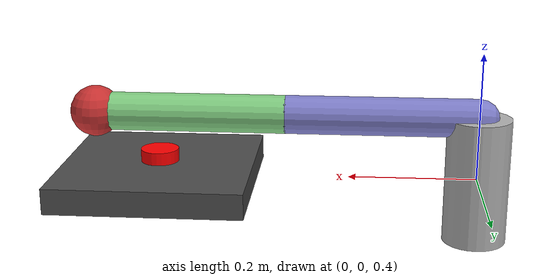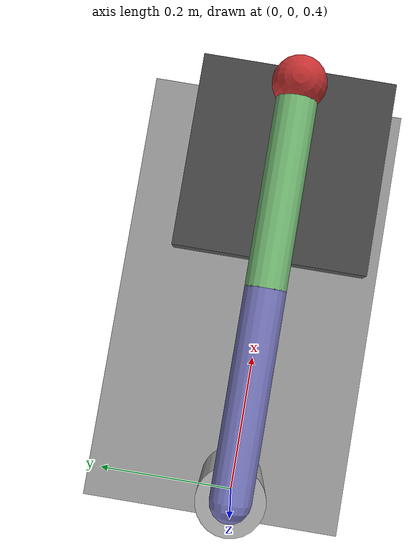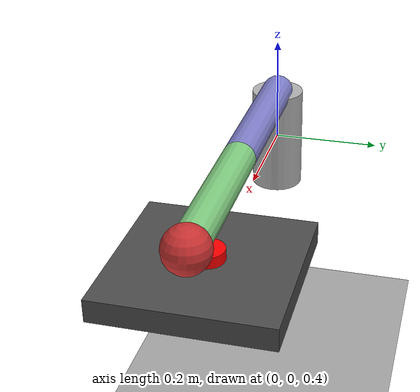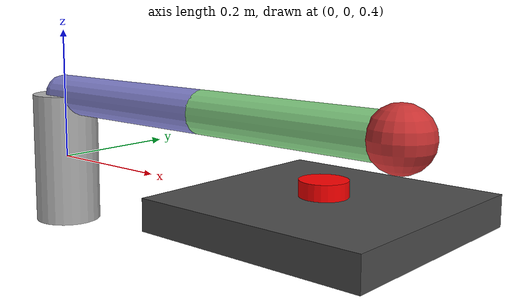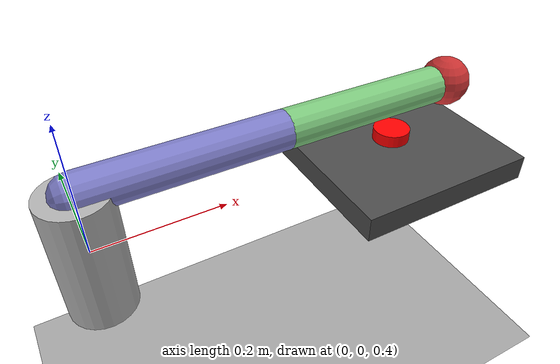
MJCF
<mujoco model="button">
  <compiler angle="radian" coordinate="local"/>
  <option timestep="0.002" gravity="0 0 -9.81"/>

  <visual>
    <global offwidth="224" offheight="224"/>
  </visual>

  <asset>
    <texture name="grid" type="2d" builtin="checker" width="512" height="512"/>
    <material name="grid" texture="grid" texrepeat="1 1"/>
  </asset>

  <worldbody>
    <light pos="0 0 1.5" dir="0 0 -1"/>
    <camera name="fixed" pos="0.8 0.8 0.8" xyaxes="-1 1 0 -0.5 -0.5 1"/>
    <geom name="floor" type="plane" size="2 2 .1" material="grid"/>

    <!-- Button panel -->
    <body name="panel" pos="0.5 0 0.4">
      <geom type="box" size="0.15 0.15 0.02" rgba="0.3 0.3 0.3 1"/>

      <!-- Button -->
      <body name="button" pos="0 0 0.03">
        <joint name="button_press" type="slide" axis="0 0 1" range="-0.02 0" stiffness="100" damping="10"/>
        <geom type="cylinder" size="0.03 0.01" rgba="1 0 0 1"/>
      </body>
    </body>

    <!-- Robot arm -->
    <body name="base" pos="0 0 0.4">
      <geom type="cylinder" size="0.05 0.1" rgba="0.7 0.7 0.7 1"/>
      <joint name="joint0" type="hinge" axis="0 0 1" range="-3.14 3.14" damping="1"/>

      <body name="link1" pos="0 0 0.1">
        <geom type="capsule" fromto="0 0 0 0.3 0 0" size="0.03" rgba="0.5 0.5 0.8 1"/>
        <joint name="joint1" type="hinge" axis="0 1 0" range="-1.57 1.57" damping="1"/>

        <body name="link2" pos="0.3 0 0">
          <geom type="capsule" fromto="0 0 0 0.3 0 0" size="0.03" rgba="0.5 0.8 0.5 1"/>
          <joint name="joint2" type="hinge" axis="0 1 0" range="-1.57 1.57" damping="1"/>

          <body name="ee" pos="0.3 0 0">
            <site name="ee_site" pos="0 0 0" size="0.02"/>
            <geom type="sphere" size="0.04" rgba="0.8 0.2 0.2 1"/>
          </body>
        </body>
      </body>
    </body>
  </worldbody>

  <sensor>
    <jointpos name="button_sensor" joint="button_press"/>
  </sensor>

  <actuator>
    <position name="act0" joint="joint0" kp="10"/>
    <position name="act1" joint="joint1" kp="10"/>
    <position name="act2" joint="joint2" kp="10"/>
  </actuator>
</mujoco>
